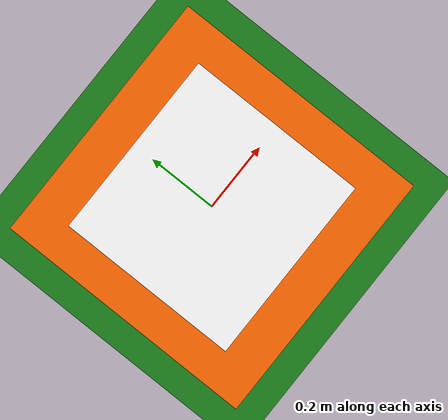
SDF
<?xml version="1.0" encoding="UTF-8"?>
<sdf version="1.9">
  <world name="default">
    <physics type="ode">
      <max_step_size>0.004</max_step_size>
      <real_time_factor>1.0</real_time_factor>
      <real_time_update_rate>250</real_time_update_rate>
    </physics>
    <gravity>0 0 -9.8</gravity>
    <magnetic_field>6e-06 2.3e-05 -4.2e-05</magnetic_field>
    <atmosphere type="adiabatic"/>
    <scene>
      <grid>false</grid>
      <ambient>0.4 0.4 0.4 1</ambient>
      <background>0.7 0.7 0.7 1</background>
      <shadows>true</shadows>
    </scene>
    <model name="ground_plane">
      <static>true</static>
      <link name="link">
        <collision name="collision">
          <geometry>
            <plane>
              <normal>0 0 1</normal>
              <size>1 1</size>
            </plane>
          </geometry>
          <surface>
            <friction>
              <ode/>
            </friction>
            <bounce/>
            <contact/>
          </surface>
        </collision>
        <visual name="visual">
          <geometry>
            <plane>
              <normal>0 0 1</normal>
              <size>500 500</size>
            </plane>
          </geometry>
          <material>
            <ambient>0.1 0.5 0.1 1</ambient>
            <diffuse>0.1 0.5 0.1 1</diffuse>
            <specular>0.01 0.01 0.01 1</specular>
          </material>
        </visual>
        <pose>0 0 0 0 -0 0</pose>
        <inertial>
          <pose>0 0 0 0 -0 0</pose>
          <mass>1</mass>
          <inertia>
            <ixx>1</ixx>
            <ixy>0</ixy>
            <ixz>0</ixz>
            <iyy>1</iyy>
            <iyz>0</iyz>
            <izz>1</izz>
          </inertia>
        </inertial>
        <enable_wind>false</enable_wind>
      </link>
      <pose>0 0 0 0 -0 0</pose>
      <self_collide>false</self_collide>
    </model>
    <light name="sunUTC" type="directional">
      <pose>0 0 10 0 -0 0</pose>
      <cast_shadows>true</cast_shadows>
      <intensity>1</intensity>
      <direction>0.001 0.625 -0.78</direction>
      <diffuse>1 0.904 0.704 1</diffuse>
      <specular>0.271 0.271 0.271 1</specular>
      <attenuation>
        <range>1000</range>
        <linear>0.9</linear>
        <constant>0.01</constant>
        <quadratic>0.001</quadratic>
      </attenuation>
      <spot>
        <inner_angle>-0.5</inner_angle>
        <outer_angle>0.1</outer_angle>
        <falloff>-0.9</falloff>
      </spot>
    </light>
    <spherical_coordinates>
      <surface_model>EARTH_WGS84</surface_model>
      <world_frame_orientation>ENU</world_frame_orientation>
      <latitude_deg>47.397971057728974</latitude_deg>
      <longitude_deg> 8.546163739800146</longitude_deg>
      <elevation>0</elevation>
    </spherical_coordinates>
    <model name="gva_platform">
      <static>false</static>
      <self_collide>true</self_collide>

      <link name="platform_link">
        <pose>0 0 0.01 0 0 0</pose>
        <gravity>false</gravity>

        <inertial>
          <mass>50000</mass>
          <inertia>
            <ixx>10000</ixx><ixy>0</ixy><ixz>0</ixz>
            <iyy>10000</iyy><iyz>0</iyz><izz>10000</izz>
          </inertia>
        </inertial>

        <visual name="orange_base">
          <geometry>
            <box><size>0.74 0.75 0.01</size></box>
          </geometry>
          <material>
            <ambient>1.0 0.4 0.0 1.0</ambient>
            <diffuse>1.0 0.4 0.0 1.0</diffuse>
          </material>
        </visual>

        <visual name="platform_visual">
          <geometry>
            <box><size>0.54 0.52 0.02</size></box>
          </geometry>
          <material>
            <ambient>1 1 1 1</ambient>
            <diffuse>1 1 1 1</diffuse>
            <specular>0 0 0 1</specular>
            <pbr>
              <metal>
                <albedo_map>/home/marchi/High-PrecisionAutonomousLandingSystemsForUAVsUsingVisualNavigation/Simulation/moving_platform/nested_paper_target.png</albedo_map>
              </metal>
            </pbr>
          </material>
        </visual>

        <collision name="platform_collision">
          <geometry>
            <box><size>0.74 0.74 0.02</size></box>
          </geometry>
          <surface>
            <friction>
              <ode>
                <mu>100</mu>
                <mu2>50</mu2>
              </ode>
            </friction>
          </surface>
        </collision>
      </link>

      <plugin
        filename="gz-sim-velocity-control-system"
        name="gz::sim::systems::VelocityControl">
        <link_name>platform_link</link_name>
        <topic>/model/gva_platform/cmd_vel</topic>
      </plugin>
    </model>
  </world>
</sdf>
